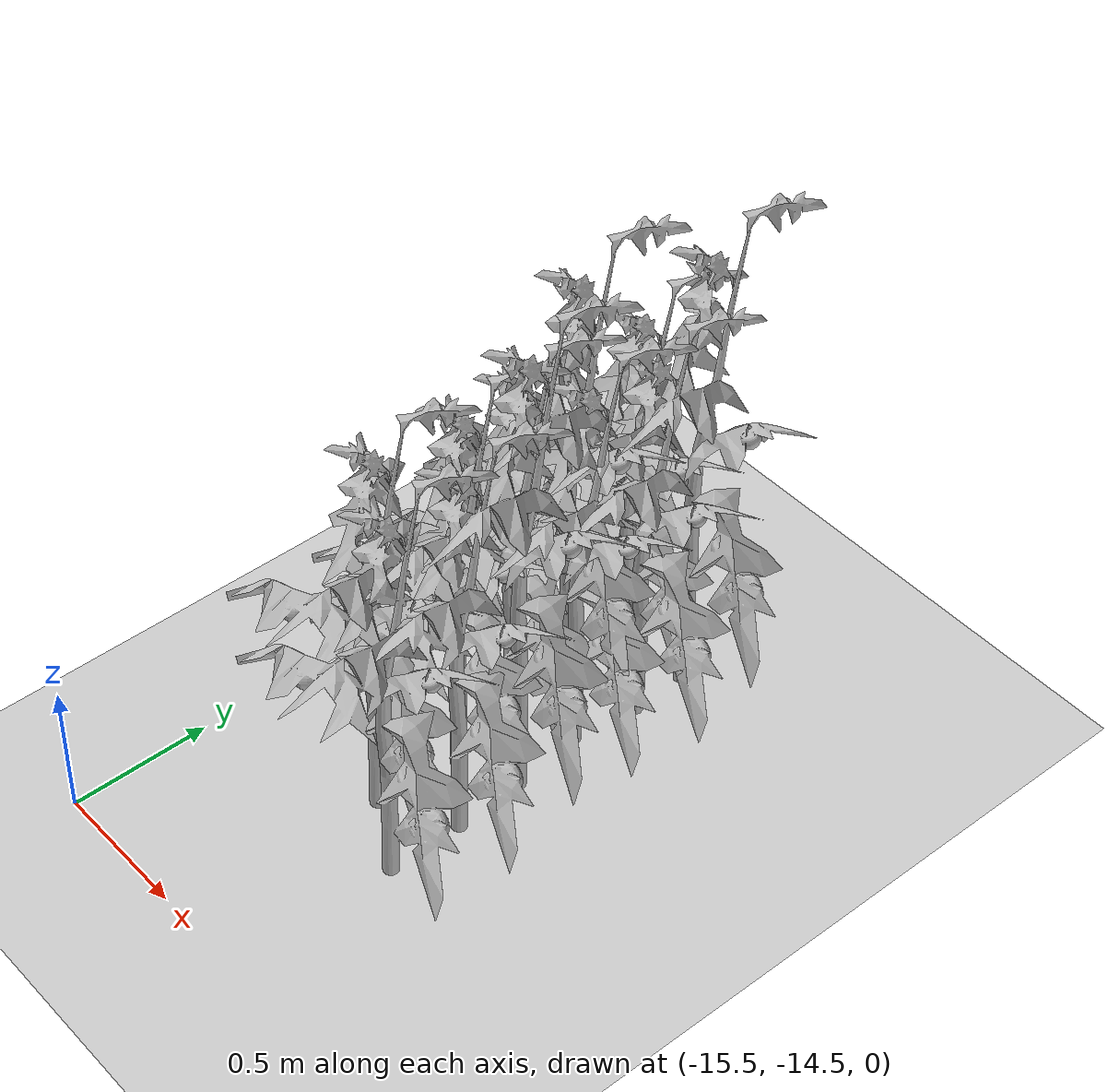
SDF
<sdf version="1.6">
 <world name="default">
  <model name="ground_plane">
   <static>1</static>
   <link name="link">
    <collision name="collision">
     <geometry><plane><normal>0 0 1</normal><size>100 100</size></plane></geometry>
     <surface>
      <contact><collide_bitmask>65535</collide_bitmask></contact>
      <friction><ode><mu>100</mu><mu2>50</mu2></ode></friction>
     </surface>
    </collision>
    <visual name="visual">
     <cast_shadows>0</cast_shadows>
     <geometry><plane><normal>0 0 1</normal><size>100 100</size></plane></geometry>
     <material>
      <script><uri>file://media/materials/scripts/gazebo.material</uri><name>Gazebo/Grey</name></script>
     </material>
    </visual>
   </link>
  </model>
  <model name="Front_Plant_1_25">
   <model name="tomato_plant_medium">
    <static>1</static>
    <link name="link">
     <collision name="collision">
      <pose>0 0 0 1.5708 -0 0</pose>
      <geometry><mesh><scale>0.5 0.5 0.5</scale><uri>model://stick/meshes/stick.dae</uri></mesh></geometry>
     </collision>
     <visual name="visual">
      <geometry>
       <mesh><scale>5e-06 5e-06 6e-06</scale><uri>model://tomato_plant_medium/meshes/tomato-plant.dae</uri></mesh>
      </geometry>
     </visual>
    </link>
    <pose>0.087453 -0.595994 0.012396 0 -0 0</pose>
   </model>
   <model name="tomato_plant_medium_0">
    <static>1</static>
    <link name="link">
     <collision name="collision">
      <pose>0 0 0 1.5708 -0 0</pose>
      <geometry><mesh><scale>0.5 0.5 0.5</scale><uri>model://stick/meshes/stick.dae</uri></mesh></geometry>
     </collision>
     <visual name="visual">
      <geometry>
       <mesh><scale>5e-06 5e-06 6e-06</scale><uri>model://tomato_plant_medium/meshes/tomato-plant.dae</uri></mesh>
      </geometry>
     </visual>
    </link>
    <pose>-0.086166 -0.251822 0.012396 0 -0 0</pose>
   </model>
   <model name="tomato_plant_medium_1">
    <static>1</static>
    <link name="link">
     <collision name="collision">
      <pose>0 0 0 1.5708 -0 0</pose>
      <geometry><mesh><scale>0.5 0.5 0.5</scale><uri>model://stick/meshes/stick.dae</uri></mesh></geometry>
     </collision>
     <visual name="visual">
      <geometry>
       <mesh><scale>5e-06 5e-06 6e-06</scale><uri>model://tomato_plant_medium/meshes/tomato-plant.dae</uri></mesh>
      </geometry>
     </visual>
    </link>
    <pose>0.080199 0.118127 0.012396 0 -0 0</pose>
   </model>
   <model name="tomato_plant_small">
    <static>1</static>
    <link name="link">
     <collision name="collision">
      <pose>0 0 0 1.5708 -0 0</pose>
      <geometry><mesh><scale>0.5 0.45 0.5</scale><uri>model://stick/meshes/stick.dae</uri></mesh></geometry>
     </collision>
     <visual name="visual">
      <geometry>
       <mesh><scale>5e-06 5e-06 5e-06</scale><uri>model://tomato_plant_small/meshes/tomato-plant.dae</uri></mesh>
      </geometry>
     </visual>
    </link>
    <pose>0.099683 -1.12011 0.012396 0 -0 0</pose>
   </model>
   <model name="tomato_plant_small_0">
    <static>1</static>
    <link name="link">
     <collision name="collision">
      <pose>0 0 0 1.5708 -0 0</pose>
      <geometry><mesh><scale>0.5 0.45 0.5</scale><uri>model://stick/meshes/stick.dae</uri></mesh></geometry>
     </collision>
     <visual name="visual">
      <geometry>
       <mesh><scale>5e-06 5e-06 5e-06</scale><uri>model://tomato_plant_small/meshes/tomato-plant.dae</uri></mesh>
      </geometry>
     </visual>
    </link>
    <pose>-0.138771 -0.983982 0.012396 0 -0 0</pose>
   </model>
   <model name="tomato_plant_small_1">
    <static>1</static>
    <link name="link">
     <collision name="collision">
      <pose>0 0 0 1.5708 -0 0</pose>
      <geometry><mesh><scale>0.5 0.45 0.5</scale><uri>model://stick/meshes/stick.dae</uri></mesh></geometry>
     </collision>
     <visual name="visual">
      <geometry>
       <mesh><scale>5e-06 5e-06 5e-06</scale><uri>model://tomato_plant_small/meshes/tomato-plant.dae</uri></mesh>
      </geometry>
     </visual>
    </link>
    <pose>0.101334 -0.848814 0.012396 0 -0 0</pose>
   </model>
   <model name="tomato_plant_small_2">
    <static>1</static>
    <link name="link">
     <collision name="collision">
      <pose>0 0 0 1.5708 -0 0</pose>
      <geometry><mesh><scale>0.5 0.45 0.5</scale><uri>model://stick/meshes/stick.dae</uri></mesh></geometry>
     </collision>
     <visual name="visual">
      <geometry>
       <mesh><scale>5e-06 5e-06 5e-06</scale><uri>model://tomato_plant_small/meshes/tomato-plant.dae</uri></mesh>
      </geometry>
     </visual>
    </link>
    <pose>-0.103369 -0.683189 0.012396 0 -0 0</pose>
   </model>
   <model name="tomato_plant_small_3">
    <static>1</static>
    <link name="link">
     <collision name="collision">
      <pose>0 0 0 1.5708 -0 0</pose>
      <geometry><mesh><scale>0.5 0.45 0.5</scale><uri>model://stick/meshes/stick.dae</uri></mesh></geometry>
     </collision>
     <visual name="visual">
      <geometry>
       <mesh><scale>5e-06 5e-06 5e-06</scale><uri>model://tomato_plant_small/meshes/tomato-plant.dae</uri></mesh>
      </geometry>
     </visual>
    </link>
    <pose>-0.104381 -0.464811 0.012396 0 -0 0</pose>
   </model>
   <model name="tomato_plant_small_4">
    <static>1</static>
    <link name="link">
     <collision name="collision">
      <pose>0 0 0 1.5708 -0 0</pose>
      <geometry><mesh><scale>0.5 0.45 0.5</scale><uri>model://stick/meshes/stick.dae</uri></mesh></geometry>
     </collision>
     <visual name="visual">
      <geometry>
       <mesh><scale>5e-06 5e-06 5e-06</scale><uri>model://tomato_plant_small/meshes/tomato-plant.dae</uri></mesh>
      </geometry>
     </visual>
    </link>
    <pose>0.055604 -0.336879 0.012396 0 -0 0</pose>
   </model>
   <model name="tomato_plant_small_5">
    <static>1</static>
    <link name="link">
     <collision name="collision">
      <pose>0 0 0 1.5708 -0 0</pose>
      <geometry><mesh><scale>0.5 0.45 0.5</scale><uri>model://stick/meshes/stick.dae</uri></mesh></geometry>
     </collision>
     <visual name="visual">
      <geometry>
       <mesh><scale>5e-06 5e-06 5e-06</scale><uri>model://tomato_plant_small/meshes/tomato-plant.dae</uri></mesh>
      </geometry>
     </visual>
    </link>
    <pose>0.085059 -0.092572 0.012396 0 -0 0</pose>
   </model>
   <model name="tomato_plant_small_6">
    <static>1</static>
    <link name="link">
     <collision name="collision">
      <pose>0 0 0 1.5708 -0 0</pose>
      <geometry><mesh><scale>0.5 0.45 0.5</scale><uri>model://stick/meshes/stick.dae</uri></mesh></geometry>
     </collision>
     <visual name="visual">
      <geometry>
       <mesh><scale>5e-06 5e-06 5e-06</scale><uri>model://tomato_plant_small/meshes/tomato-plant.dae</uri></mesh>
      </geometry>
     </visual>
    </link>
    <pose>-0.096345 0.008888 0.012396 0 -0 0</pose>
   </model>
   <static>0</static>
   <pose>-14.7343 -12.8019 0 0 -0 0</pose>
  </model>
 </world>
</sdf>
